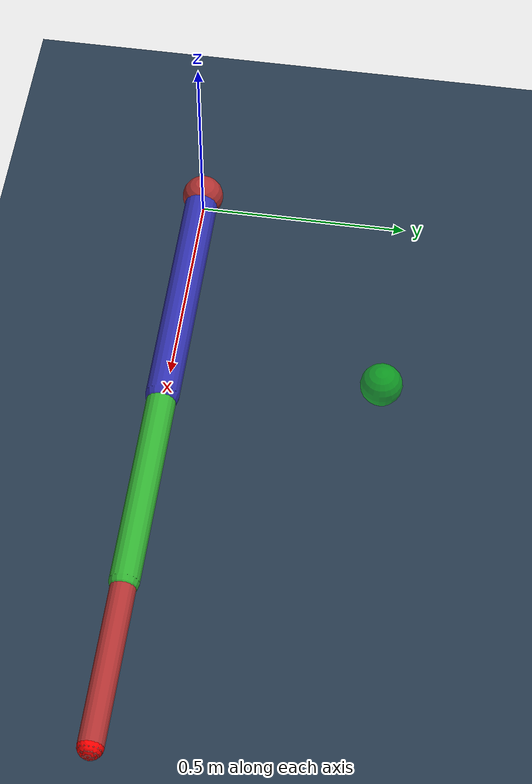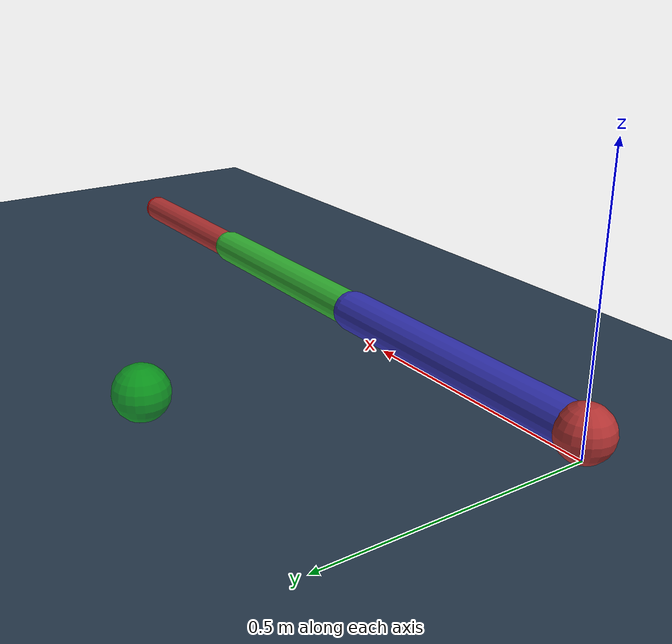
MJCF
<mujoco model="3R_robotic_arm">
    <compiler angle="radian" coordinate="local" />
    <option timestep="0.01" gravity="0 0 -9.81" />

    <asset>
        <texture type="skybox" builtin="gradient" rgb1="0.3 0.5 0.7" rgb2="0 0 0" width="512" height="512" />
        <texture name="texgeom" type="cube" builtin="flat" mark="cross" width="127" height="1278" rgb1="0.8 0.6 0.4" rgb2="0.8 0.6 0.4" markrgb="1 1 1" random="0.01" />
        <texture name="texplane" type="2d" builtin="checker" rgb1="0.2 0.3 0.4" rgb2="0.1 0.15 0.2" width="512" height="512" />

        <material name="geom" texture="texgeom" texuniform="true" />
        <material name="MatPlane" reflectance="0.3" texture="texplane" texrepeat="1 1" texuniform="true" />
        <material name="target_mat" rgba="0 1 0 0.5" />
    </asset>

    <worldbody>
        <light directional="true" diffuse="0.6 0.6 0.6" specular="0.2 0.2 0.2" pos="0 0 4" dir="0 0 -1" />
        <geom name="floor" pos="0 0 0" size="0 0 0.05" type="plane" material="MatPlane" condim="3" />

        <body name="base" pos="0 0 0.05">
            <geom type="sphere" size="0.05" rgba="0.7 0.2 0.2 1" />

            <!-- LINK 1 -->
            <body name="link1" pos="0 0 0">
                <joint name="joint1" type="hinge" axis="0 0 1" range="-3.14 3.14" damping="0.5"/>
                <geom type="capsule" fromto="0 0 0 0.6 0 0" size="0.04" rgba="0.2 0.2 0.7 1" />

                <!-- LINK 2 -->
                <body name="link2" pos="0.6 0 0">
                    <joint name="joint2" type="hinge" axis="0 0 1" range="-3.14 3.14" damping="0.5"/>
                    <geom type="capsule" fromto="0 0 0 0.5 0 0" size="0.035" rgba="0.2 0.7 0.2 1" />

                    <!-- LINK 3 (New) -->
                    <body name="link3" pos="0.5 0 0">
                        <joint name="joint3" type="hinge" axis="0 0 1" range="-3.14 3.14" damping="0.5"/>
                        <geom type="capsule" fromto="0 0 0 0.4 0 0" size="0.03" rgba="0.7 0.2 0.2 1" />

                        <!-- End Effector Body -->
                        <body name="ee_tip" pos="0.4 0 0">
                            <geom type="sphere" size="0.03" rgba="1 0 0 1" mass="0.01"/>
                        </body>
                    </body>
                </body>
            </body>
        </body>

        <!-- TARGET OBJECT -->
        <body name="target" pos="0.5 0.5 0.05">
            <geom type="sphere" size="0.05" material="target_mat" conaffinity="0" contype="0"/>
        </body>
    </worldbody>

    <actuator>
        <motor name="motor1" joint="joint1" ctrlrange="-50 50" gear="1" />
        <motor name="motor2" joint="joint2" ctrlrange="-50 50" gear="1" />
        <motor name="motor3" joint="joint3" ctrlrange="-50 50" gear="1" />
    </actuator>
</mujoco>
